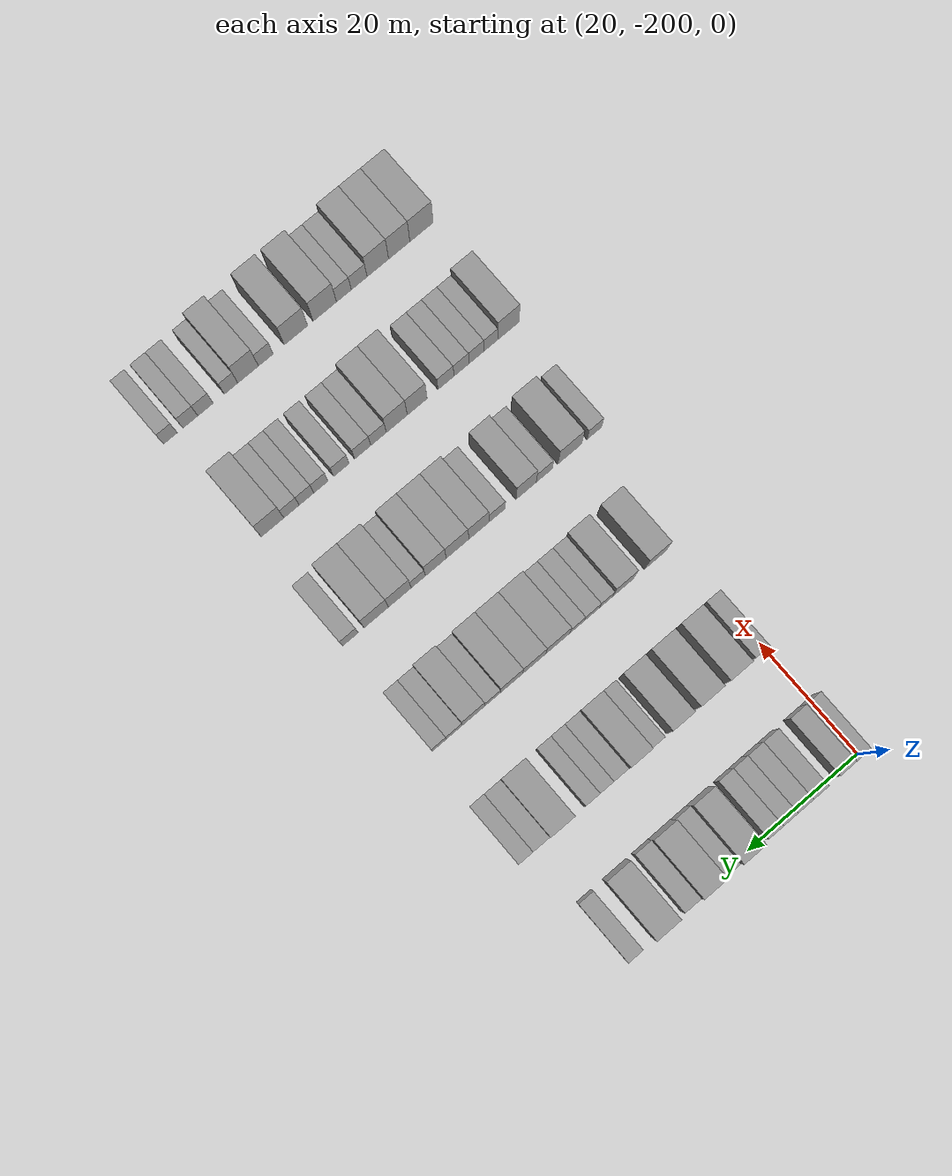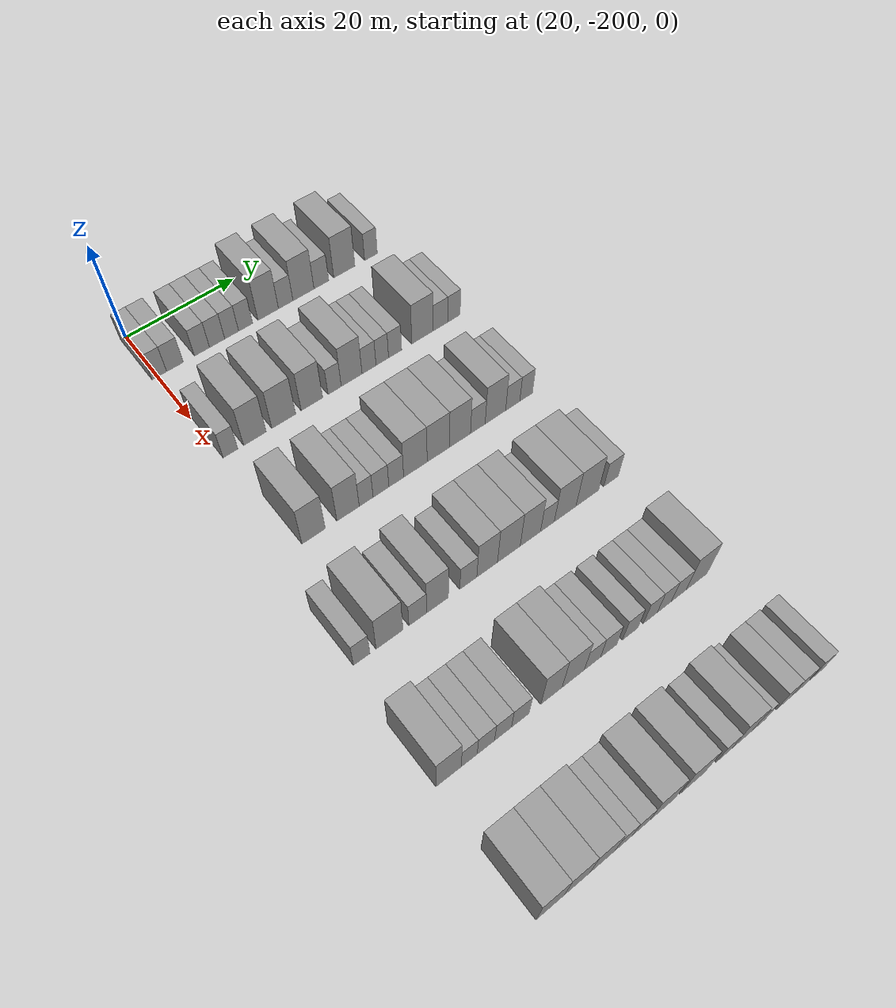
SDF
<sdf version="1.6">
 <world name="default">
  <model name="building_36">
   <static>1</static>
   <pose>25.0000 -199.6421 0 0.000000 0.000000 0.000000</pose>
   <link name="link">
    <pose>0 0 3.00 0 0 0</pose>
    <collision name="collision"><geometry><box><size>10.0000 2.5929 6.0000</size></box></geometry></collision>
    <visual name="visual">
     <cast_shadows>0</cast_shadows>
     <geometry><box><size>10.0000 2.5929 6.0000</size></box></geometry>
     <material>
      <script>
       <uri>model://grey_wall/materials/scripts</uri>
       <uri>model://grey_wall/materials/textures</uri>
       <name>vrc/grey_wall</name>
      </script>
     </material>
    </visual>
   </link>
  </model>
  <model name="building_37">
   <static>1</static>
   <pose>25.0000 -196.8512 0 0.000000 0.000000 0.000000</pose>
   <link name="link">
    <pose>0 0 3.00 0 0 0</pose>
    <collision name="collision"><geometry><box><size>10.0000 2.9890 6.0000</size></box></geometry></collision>
    <visual name="visual">
     <cast_shadows>0</cast_shadows>
     <geometry><box><size>10.0000 2.9890 6.0000</size></box></geometry>
     <material>
      <script>
       <uri>model://grey_wall/materials/scripts</uri>
       <uri>model://grey_wall/materials/textures</uri>
       <name>vrc/grey_wall</name>
      </script>
     </material>
    </visual>
   </link>
  </model>
  <model name="building_38">
   <static>1</static>
   <pose>25.0000 -191.9824 0 0.000000 0.000000 0.000000</pose>
   <link name="link">
    <pose>0 0 3.00 0 0 0</pose>
    <collision name="collision"><geometry><box><size>10.0000 2.7486 6.0000</size></box></geometry></collision>
    <visual name="visual">
     <cast_shadows>0</cast_shadows>
     <geometry><box><size>10.0000 2.7486 6.0000</size></box></geometry>
     <material>
      <script>
       <uri>model://grey_wall/materials/scripts</uri>
       <uri>model://grey_wall/materials/textures</uri>
       <name>vrc/grey_wall</name>
      </script>
     </material>
    </visual>
   </link>
  </model>
  <model name="building_39">
   <static>1</static>
   <pose>25.0000 -189.2116 0 0.000000 0.000000 0.000000</pose>
   <link name="link">
    <pose>0 0 3.00 0 0 0</pose>
    <collision name="collision"><geometry><box><size>10.0000 2.7929 6.0000</size></box></geometry></collision>
    <visual name="visual">
     <cast_shadows>0</cast_shadows>
     <geometry><box><size>10.0000 2.7929 6.0000</size></box></geometry>
     <material>
      <script>
       <uri>model://grey_wall/materials/scripts</uri>
       <uri>model://grey_wall/materials/textures</uri>
       <name>vrc/grey_wall</name>
      </script>
     </material>
    </visual>
   </link>
  </model>
  <model name="building_40">
   <static>1</static>
   <pose>25.0000 -186.5201 0 0.000000 0.000000 0.000000</pose>
   <link name="link">
    <pose>0 0 3.00 0 0 0</pose>
    <collision name="collision"><geometry><box><size>10.0000 2.5901 6.0000</size></box></geometry></collision>
    <visual name="visual">
     <cast_shadows>0</cast_shadows>
     <geometry><box><size>10.0000 2.5901 6.0000</size></box></geometry>
     <material>
      <script>
       <uri>model://grey_wall/materials/scripts</uri>
       <uri>model://grey_wall/materials/textures</uri>
       <name>vrc/grey_wall</name>
      </script>
     </material>
    </visual>
   </link>
  </model>
  <model name="building_41">
   <static>1</static>
   <pose>25.0000 -183.9084 0 0.000000 0.000000 0.000000</pose>
   <link name="link">
    <pose>0 0 3.00 0 0 0</pose>
    <collision name="collision"><geometry><box><size>10.0000 2.6333 6.0000</size></box></geometry></collision>
    <visual name="visual">
     <cast_shadows>0</cast_shadows>
     <geometry><box><size>10.0000 2.6333 6.0000</size></box></geometry>
     <material>
      <script>
       <uri>model://grey_wall/materials/scripts</uri>
       <uri>model://grey_wall/materials/textures</uri>
       <name>vrc/grey_wall</name>
      </script>
     </material>
    </visual>
   </link>
  </model>
  <model name="building_42">
   <static>1</static>
   <pose>25.0000 -179.6221 0 0.000000 0.000000 0.000000</pose>
   <link name="link">
    <pose>0 0 4.50 0 0 0</pose>
    <collision name="collision"><geometry><box><size>10.0000 3.9394 9.0000</size></box></geometry></collision>
    <visual name="visual">
     <cast_shadows>0</cast_shadows>
     <geometry><box><size>10.0000 3.9394 9.0000</size></box></geometry>
     <material>
      <script>
       <uri>model://grey_wall/materials/scripts</uri>
       <uri>model://grey_wall/materials/textures</uri>
       <name>vrc/grey_wall</name>
      </script>
     </material>
    </visual>
   </link>
  </model>
  <model name="building_43">
   <static>1</static>
   <pose>25.0000 -176.2535 0 0.000000 0.000000 0.000000</pose>
   <link name="link">
    <pose>0 0 3.00 0 0 0</pose>
    <collision name="collision"><geometry><box><size>10.0000 2.7978 6.0000</size></box></geometry></collision>
    <visual name="visual">
     <cast_shadows>0</cast_shadows>
     <geometry><box><size>10.0000 2.7978 6.0000</size></box></geometry>
     <material>
      <script>
       <uri>model://grey_wall/materials/scripts</uri>
       <uri>model://grey_wall/materials/textures</uri>
       <name>vrc/grey_wall</name>
      </script>
     </material>
    </visual>
   </link>
  </model>
  <model name="building_44">
   <static>1</static>
   <pose>25.0000 -172.7922 0 0.000000 0.000000 0.000000</pose>
   <link name="link">
    <pose>0 0 4.50 0 0 0</pose>
    <collision name="collision"><geometry><box><size>10.0000 4.1246 9.0000</size></box></geometry></collision>
    <visual name="visual">
     <cast_shadows>0</cast_shadows>
     <geometry><box><size>10.0000 4.1246 9.0000</size></box></geometry>
     <material>
      <script>
       <uri>model://grey_wall/materials/scripts</uri>
       <uri>model://grey_wall/materials/textures</uri>
       <name>vrc/grey_wall</name>
      </script>
     </material>
    </visual>
   </link>
  </model>
  <model name="building_45">
   <static>1</static>
   <pose>25.0000 -169.2638 0 0.000000 0.000000 0.000000</pose>
   <link name="link">
    <pose>0 0 3.00 0 0 0</pose>
    <collision name="collision"><geometry><box><size>10.0000 2.9322 6.0000</size></box></geometry></collision>
    <visual name="visual">
     <cast_shadows>0</cast_shadows>
     <geometry><box><size>10.0000 2.9322 6.0000</size></box></geometry>
     <material>
      <script>
       <uri>model://grey_wall/materials/scripts</uri>
       <uri>model://grey_wall/materials/textures</uri>
       <name>vrc/grey_wall</name>
      </script>
     </material>
    </visual>
   </link>
  </model>
  <model name="building_46">
   <static>1</static>
   <pose>25.0000 -164.6621 0 0.000000 0.000000 0.000000</pose>
   <link name="link">
    <pose>0 0 4.50 0 0 0</pose>
    <collision name="collision"><geometry><box><size>10.0000 4.2710 9.0000</size></box></geometry></collision>
    <visual name="visual">
     <cast_shadows>0</cast_shadows>
     <geometry><box><size>10.0000 4.2710 9.0000</size></box></geometry>
     <material>
      <script>
       <uri>model://grey_wall/materials/scripts</uri>
       <uri>model://grey_wall/materials/textures</uri>
       <name>vrc/grey_wall</name>
      </script>
     </material>
    </visual>
   </link>
  </model>
  <model name="building_47">
   <static>1</static>
   <pose>25.0000 -159.2184 0 0.000000 0.000000 0.000000</pose>
   <link name="link">
    <pose>0 0 3.00 0 0 0</pose>
    <collision name="collision"><geometry><box><size>10.0000 2.6165 6.0000</size></box></geometry></collision>
    <visual name="visual">
     <cast_shadows>0</cast_shadows>
     <geometry><box><size>10.0000 2.6165 6.0000</size></box></geometry>
     <material>
      <script>
       <uri>model://grey_wall/materials/scripts</uri>
       <uri>model://grey_wall/materials/textures</uri>
       <name>vrc/grey_wall</name>
      </script>
     </material>
    </visual>
   </link>
  </model>
  <model name="building_213">
   <static>1</static>
   <pose>44.0000 -198.5440 0 0.000000 0.000000 0.000000</pose>
   <link name="link">
    <pose>0 0 3.00 0 0 0</pose>
    <collision name="collision"><geometry><box><size>10.0000 2.5553 6.0000</size></box></geometry></collision>
    <visual name="visual">
     <cast_shadows>0</cast_shadows>
     <geometry><box><size>10.0000 2.5553 6.0000</size></box></geometry>
     <material>
      <script>
       <uri>model://grey_wall/materials/scripts</uri>
       <uri>model://grey_wall/materials/textures</uri>
       <name>vrc/grey_wall</name>
      </script>
     </material>
    </visual>
   </link>
  </model>
  <model name="building_214">
   <static>1</static>
   <pose>44.0000 -194.2809 0 0.000000 0.000000 0.000000</pose>
   <link name="link">
    <pose>0 0 4.50 0 0 0</pose>
    <collision name="collision"><geometry><box><size>10.0000 3.9709 9.0000</size></box></geometry></collision>
    <visual name="visual">
     <cast_shadows>0</cast_shadows>
     <geometry><box><size>10.0000 3.9709 9.0000</size></box></geometry>
     <material>
      <script>
       <uri>model://grey_wall/materials/scripts</uri>
       <uri>model://grey_wall/materials/textures</uri>
       <name>vrc/grey_wall</name>
      </script>
     </material>
    </visual>
   </link>
  </model>
  <model name="building_215">
   <static>1</static>
   <pose>44.0000 -189.1593 0 0.000000 0.000000 0.000000</pose>
   <link name="link">
    <pose>0 0 4.50 0 0 0</pose>
    <collision name="collision"><geometry><box><size>10.0000 4.2723 9.0000</size></box></geometry></collision>
    <visual name="visual">
     <cast_shadows>0</cast_shadows>
     <geometry><box><size>10.0000 4.2723 9.0000</size></box></geometry>
     <material>
      <script>
       <uri>model://grey_wall/materials/scripts</uri>
       <uri>model://grey_wall/materials/textures</uri>
       <name>vrc/grey_wall</name>
      </script>
     </material>
    </visual>
   </link>
  </model>
  <model name="building_216">
   <static>1</static>
   <pose>44.0000 -184.0542 0 0.000000 0.000000 0.000000</pose>
   <link name="link">
    <pose>0 0 4.50 0 0 0</pose>
    <collision name="collision"><geometry><box><size>10.0000 3.9378 9.0000</size></box></geometry></collision>
    <visual name="visual">
     <cast_shadows>0</cast_shadows>
     <geometry><box><size>10.0000 3.9378 9.0000</size></box></geometry>
     <material>
      <script>
       <uri>model://grey_wall/materials/scripts</uri>
       <uri>model://grey_wall/materials/textures</uri>
       <name>vrc/grey_wall</name>
      </script>
     </material>
    </visual>
   </link>
  </model>
  <model name="building_217">
   <static>1</static>
   <pose>44.0000 -179.8505 0 0.000000 0.000000 0.000000</pose>
   <link name="link">
    <pose>0 0 3.00 0 0 0</pose>
    <collision name="collision"><geometry><box><size>10.0000 2.4697 6.0000</size></box></geometry></collision>
    <visual name="visual">
     <cast_shadows>0</cast_shadows>
     <geometry><box><size>10.0000 2.4697 6.0000</size></box></geometry>
     <material>
      <script>
       <uri>model://grey_wall/materials/scripts</uri>
       <uri>model://grey_wall/materials/textures</uri>
       <name>vrc/grey_wall</name>
      </script>
     </material>
    </visual>
   </link>
  </model>
  <model name="building_218">
   <static>1</static>
   <pose>44.0000 -176.6518 0 0.000000 0.000000 0.000000</pose>
   <link name="link">
    <pose>0 0 4.50 0 0 0</pose>
    <collision name="collision"><geometry><box><size>10.0000 3.9276 9.0000</size></box></geometry></collision>
    <visual name="visual">
     <cast_shadows>0</cast_shadows>
     <geometry><box><size>10.0000 3.9276 9.0000</size></box></geometry>
     <material>
      <script>
       <uri>model://grey_wall/materials/scripts</uri>
       <uri>model://grey_wall/materials/textures</uri>
       <name>vrc/grey_wall</name>
      </script>
     </material>
    </visual>
   </link>
  </model>
  <model name="building_219">
   <static>1</static>
   <pose>44.0000 -173.3503 0 0.000000 0.000000 0.000000</pose>
   <link name="link">
    <pose>0 0 3.00 0 0 0</pose>
    <collision name="collision"><geometry><box><size>10.0000 2.6756 6.0000</size></box></geometry></collision>
    <visual name="visual">
     <cast_shadows>0</cast_shadows>
     <geometry><box><size>10.0000 2.6756 6.0000</size></box></geometry>
     <material>
      <script>
       <uri>model://grey_wall/materials/scripts</uri>
       <uri>model://grey_wall/materials/textures</uri>
       <name>vrc/grey_wall</name>
      </script>
     </material>
    </visual>
   </link>
  </model>
  <model name="building_220">
   <static>1</static>
   <pose>44.0000 -170.7973 0 0.000000 0.000000 0.000000</pose>
   <link name="link">
    <pose>0 0 3.00 0 0 0</pose>
    <collision name="collision"><geometry><box><size>10.0000 2.4304 6.0000</size></box></geometry></collision>
    <visual name="visual">
     <cast_shadows>0</cast_shadows>
     <geometry><box><size>10.0000 2.4304 6.0000</size></box></geometry>
     <material>
      <script>
       <uri>model://grey_wall/materials/scripts</uri>
       <uri>model://grey_wall/materials/textures</uri>
       <name>vrc/grey_wall</name>
      </script>
     </material>
    </visual>
   </link>
  </model>
  <model name="building_221">
   <static>1</static>
   <pose>44.0000 -168.3030 0 0.000000 0.000000 0.000000</pose>
   <link name="link">
    <pose>0 0 3.00 0 0 0</pose>
    <collision name="collision"><geometry><box><size>10.0000 2.5582 6.0000</size></box></geometry></collision>
    <visual name="visual">
     <cast_shadows>0</cast_shadows>
     <geometry><box><size>10.0000 2.5582 6.0000</size></box></geometry>
     <material>
      <script>
       <uri>model://grey_wall/materials/scripts</uri>
       <uri>model://grey_wall/materials/textures</uri>
       <name>vrc/grey_wall</name>
      </script>
     </material>
    </visual>
   </link>
  </model>
  <model name="building_222">
   <static>1</static>
   <pose>44.0000 -162.8863 0 0.000000 0.000000 0.000000</pose>
   <link name="link">
    <pose>0 0 4.50 0 0 0</pose>
    <collision name="collision"><geometry><box><size>10.0000 4.2752 9.0000</size></box></geometry></collision>
    <visual name="visual">
     <cast_shadows>0</cast_shadows>
     <geometry><box><size>10.0000 4.2752 9.0000</size></box></geometry>
     <material>
      <script>
       <uri>model://grey_wall/materials/scripts</uri>
       <uri>model://grey_wall/materials/textures</uri>
       <name>vrc/grey_wall</name>
      </script>
     </material>
    </visual>
   </link>
  </model>
  <model name="building_223">
   <static>1</static>
   <pose>44.0000 -159.2791 0 0.000000 0.000000 0.000000</pose>
   <link name="link">
    <pose>0 0 3.00 0 0 0</pose>
    <collision name="collision"><geometry><box><size>10.0000 2.9393 6.0000</size></box></geometry></collision>
    <visual name="visual">
     <cast_shadows>0</cast_shadows>
     <geometry><box><size>10.0000 2.9393 6.0000</size></box></geometry>
     <material>
      <script>
       <uri>model://grey_wall/materials/scripts</uri>
       <uri>model://grey_wall/materials/textures</uri>
       <name>vrc/grey_wall</name>
      </script>
     </material>
    </visual>
   </link>
  </model>
  <model name="building_224">
   <static>1</static>
   <pose>44.0000 -156.5455 0 0.000000 0.000000 0.000000</pose>
   <link name="link">
    <pose>0 0 3.00 0 0 0</pose>
    <collision name="collision"><geometry><box><size>10.0000 2.5279 6.0000</size></box></geometry></collision>
    <visual name="visual">
     <cast_shadows>0</cast_shadows>
     <geometry><box><size>10.0000 2.5279 6.0000</size></box></geometry>
     <material>
      <script>
       <uri>model://grey_wall/materials/scripts</uri>
       <uri>model://grey_wall/materials/textures</uri>
       <name>vrc/grey_wall</name>
      </script>
     </material>
    </visual>
   </link>
  </model>
  <model name="building_395">
   <static>1</static>
   <pose>63.0000 -196.6802 0 0.000000 0.000000 0.000000</pose>
   <link name="link">
    <pose>0 0 4.50 0 0 0</pose>
    <collision name="collision"><geometry><box><size>10.0000 3.9564 9.0000</size></box></geometry></collision>
    <visual name="visual">
     <cast_shadows>0</cast_shadows>
     <geometry><box><size>10.0000 3.9564 9.0000</size></box></geometry>
     <material>
      <script>
       <uri>model://grey_wall/materials/scripts</uri>
       <uri>model://grey_wall/materials/textures</uri>
       <name>vrc/grey_wall</name>
      </script>
     </material>
    </visual>
   </link>
  </model>
  <model name="building_396">
   <static>1</static>
   <pose>63.0000 -190.7588 0 0.000000 0.000000 0.000000</pose>
   <link name="link">
    <pose>0 0 4.50 0 0 0</pose>
    <collision name="collision"><geometry><box><size>10.0000 3.8863 9.0000</size></box></geometry></collision>
    <visual name="visual">
     <cast_shadows>0</cast_shadows>
     <geometry><box><size>10.0000 3.8863 9.0000</size></box></geometry>
     <material>
      <script>
       <uri>model://grey_wall/materials/scripts</uri>
       <uri>model://grey_wall/materials/textures</uri>
       <name>vrc/grey_wall</name>
      </script>
     </material>
    </visual>
   </link>
  </model>
  <model name="building_397">
   <static>1</static>
   <pose>63.0000 -187.5917 0 0.000000 0.000000 0.000000</pose>
   <link name="link">
    <pose>0 0 3.00 0 0 0</pose>
    <collision name="collision"><geometry><box><size>10.0000 2.4477 6.0000</size></box></geometry></collision>
    <visual name="visual">
     <cast_shadows>0</cast_shadows>
     <geometry><box><size>10.0000 2.4477 6.0000</size></box></geometry>
     <material>
      <script>
       <uri>model://grey_wall/materials/scripts</uri>
       <uri>model://grey_wall/materials/textures</uri>
       <name>vrc/grey_wall</name>
      </script>
     </material>
    </visual>
   </link>
  </model>
  <model name="building_398">
   <static>1</static>
   <pose>63.0000 -184.9614 0 0.000000 0.000000 0.000000</pose>
   <link name="link">
    <pose>0 0 3.00 0 0 0</pose>
    <collision name="collision"><geometry><box><size>10.0000 2.8130 6.0000</size></box></geometry></collision>
    <visual name="visual">
     <cast_shadows>0</cast_shadows>
     <geometry><box><size>10.0000 2.8130 6.0000</size></box></geometry>
     <material>
      <script>
       <uri>model://grey_wall/materials/scripts</uri>
       <uri>model://grey_wall/materials/textures</uri>
       <name>vrc/grey_wall</name>
      </script>
     </material>
    </visual>
   </link>
  </model>
  <model name="building_399">
   <static>1</static>
   <pose>63.0000 -182.2261 0 0.000000 0.000000 0.000000</pose>
   <link name="link">
    <pose>0 0 3.00 0 0 0</pose>
    <collision name="collision"><geometry><box><size>10.0000 2.6577 6.0000</size></box></geometry></collision>
    <visual name="visual">
     <cast_shadows>0</cast_shadows>
     <geometry><box><size>10.0000 2.6577 6.0000</size></box></geometry>
     <material>
      <script>
       <uri>model://grey_wall/materials/scripts</uri>
       <uri>model://grey_wall/materials/textures</uri>
       <name>vrc/grey_wall</name>
      </script>
     </material>
    </visual>
   </link>
  </model>
  <model name="building_400">
   <static>1</static>
   <pose>63.0000 -178.7438 0 0.000000 0.000000 0.000000</pose>
   <link name="link">
    <pose>0 0 4.50 0 0 0</pose>
    <collision name="collision"><geometry><box><size>10.0000 4.3069 9.0000</size></box></geometry></collision>
    <visual name="visual">
     <cast_shadows>0</cast_shadows>
     <geometry><box><size>10.0000 4.3069 9.0000</size></box></geometry>
     <material>
      <script>
       <uri>model://grey_wall/materials/scripts</uri>
       <uri>model://grey_wall/materials/textures</uri>
       <name>vrc/grey_wall</name>
      </script>
     </material>
    </visual>
   </link>
  </model>
  <model name="building_401">
   <static>1</static>
   <pose>63.0000 -174.5188 0 0.000000 0.000000 0.000000</pose>
   <link name="link">
    <pose>0 0 4.50 0 0 0</pose>
    <collision name="collision"><geometry><box><size>10.0000 4.1432 9.0000</size></box></geometry></collision>
    <visual name="visual">
     <cast_shadows>0</cast_shadows>
     <geometry><box><size>10.0000 4.1432 9.0000</size></box></geometry>
     <material>
      <script>
       <uri>model://grey_wall/materials/scripts</uri>
       <uri>model://grey_wall/materials/textures</uri>
       <name>vrc/grey_wall</name>
      </script>
     </material>
    </visual>
   </link>
  </model>
  <model name="building_402">
   <static>1</static>
   <pose>63.0000 -170.4401 0 0.000000 0.000000 0.000000</pose>
   <link name="link">
    <pose>0 0 4.50 0 0 0</pose>
    <collision name="collision"><geometry><box><size>10.0000 4.0142 9.0000</size></box></geometry></collision>
    <visual name="visual">
     <cast_shadows>0</cast_shadows>
     <geometry><box><size>10.0000 4.0142 9.0000</size></box></geometry>
     <material>
      <script>
       <uri>model://grey_wall/materials/scripts</uri>
       <uri>model://grey_wall/materials/textures</uri>
       <name>vrc/grey_wall</name>
      </script>
     </material>
    </visual>
   </link>
  </model>
  <model name="building_403">
   <static>1</static>
   <pose>63.0000 -167.0190 0 0.000000 0.000000 0.000000</pose>
   <link name="link">
    <pose>0 0 3.00 0 0 0</pose>
    <collision name="collision"><geometry><box><size>10.0000 2.8282 6.0000</size></box></geometry></collision>
    <visual name="visual">
     <cast_shadows>0</cast_shadows>
     <geometry><box><size>10.0000 2.8282 6.0000</size></box></geometry>
     <material>
      <script>
       <uri>model://grey_wall/materials/scripts</uri>
       <uri>model://grey_wall/materials/textures</uri>
       <name>vrc/grey_wall</name>
      </script>
     </material>
    </visual>
   </link>
  </model>
  <model name="building_404">
   <static>1</static>
   <pose>63.0000 -163.6080 0 0.000000 0.000000 0.000000</pose>
   <link name="link">
    <pose>0 0 4.50 0 0 0</pose>
    <collision name="collision"><geometry><box><size>10.0000 3.9938 9.0000</size></box></geometry></collision>
    <visual name="visual">
     <cast_shadows>0</cast_shadows>
     <geometry><box><size>10.0000 3.9938 9.0000</size></box></geometry>
     <material>
      <script>
       <uri>model://grey_wall/materials/scripts</uri>
       <uri>model://grey_wall/materials/textures</uri>
       <name>vrc/grey_wall</name>
      </script>
     </material>
    </visual>
   </link>
  </model>
  <model name="building_405">
   <static>1</static>
   <pose>63.0000 -160.2075 0 0.000000 0.000000 0.000000</pose>
   <link name="link">
    <pose>0 0 3.00 0 0 0</pose>
    <collision name="collision"><geometry><box><size>10.0000 2.8072 6.0000</size></box></geometry></collision>
    <visual name="visual">
     <cast_shadows>0</cast_shadows>
     <geometry><box><size>10.0000 2.8072 6.0000</size></box></geometry>
     <material>
      <script>
       <uri>model://grey_wall/materials/scripts</uri>
       <uri>model://grey_wall/materials/textures</uri>
       <name>vrc/grey_wall</name>
      </script>
     </material>
    </visual>
   </link>
  </model>
  <model name="building_406">
   <static>1</static>
   <pose>63.0000 -157.5357 0 0.000000 0.000000 0.000000</pose>
   <link name="link">
    <pose>0 0 3.00 0 0 0</pose>
    <collision name="collision"><geometry><box><size>10.0000 2.5365 6.0000</size></box></geometry></collision>
    <visual name="visual">
     <cast_shadows>0</cast_shadows>
     <geometry><box><size>10.0000 2.5365 6.0000</size></box></geometry>
     <material>
      <script>
       <uri>model://grey_wall/materials/scripts</uri>
       <uri>model://grey_wall/materials/textures</uri>
       <name>vrc/grey_wall</name>
      </script>
     </material>
    </visual>
   </link>
  </model>
  <model name="building_565">
   <static>1</static>
   <pose>82.0000 -202.0254 0 0.000000 0.000000 0.000000</pose>
   <link name="link">
    <pose>0 0 3.00 0 0 0</pose>
    <collision name="collision"><geometry><box><size>10.0000 2.6658 6.0000</size></box></geometry></collision>
    <visual name="visual">
     <cast_shadows>0</cast_shadows>
     <geometry><box><size>10.0000 2.6658 6.0000</size></box></geometry>
     <material>
      <script>
       <uri>model://grey_wall/materials/scripts</uri>
       <uri>model://grey_wall/materials/textures</uri>
       <name>vrc/grey_wall</name>
      </script>
     </material>
    </visual>
   </link>
  </model>
  <model name="building_566">
   <static>1</static>
   <pose>82.0000 -197.4881 0 0.000000 0.000000 0.000000</pose>
   <link name="link">
    <pose>0 0 4.50 0 0 0</pose>
    <collision name="collision"><geometry><box><size>10.0000 4.4088 9.0000</size></box></geometry></collision>
    <visual name="visual">
     <cast_shadows>0</cast_shadows>
     <geometry><box><size>10.0000 4.4088 9.0000</size></box></geometry>
     <material>
      <script>
       <uri>model://grey_wall/materials/scripts</uri>
       <uri>model://grey_wall/materials/textures</uri>
       <name>vrc/grey_wall</name>
      </script>
     </material>
    </visual>
   </link>
  </model>
  <model name="building_567">
   <static>1</static>
   <pose>82.0000 -192.7942 0 0.000000 0.000000 0.000000</pose>
   <link name="link">
    <pose>0 0 3.00 0 0 0</pose>
    <collision name="collision"><geometry><box><size>10.0000 2.9792 6.0000</size></box></geometry></collision>
    <visual name="visual">
     <cast_shadows>0</cast_shadows>
     <geometry><box><size>10.0000 2.9792 6.0000</size></box></geometry>
     <material>
      <script>
       <uri>model://grey_wall/materials/scripts</uri>
       <uri>model://grey_wall/materials/textures</uri>
       <name>vrc/grey_wall</name>
      </script>
     </material>
    </visual>
   </link>
  </model>
  <model name="building_568">
   <static>1</static>
   <pose>82.0000 -189.4535 0 0.000000 0.000000 0.000000</pose>
   <link name="link">
    <pose>0 0 4.50 0 0 0</pose>
    <collision name="collision"><geometry><box><size>10.0000 3.7021 9.0000</size></box></geometry></collision>
    <visual name="visual">
     <cast_shadows>0</cast_shadows>
     <geometry><box><size>10.0000 3.7021 9.0000</size></box></geometry>
     <material>
      <script>
       <uri>model://grey_wall/materials/scripts</uri>
       <uri>model://grey_wall/materials/textures</uri>
       <name>vrc/grey_wall</name>
      </script>
     </material>
    </visual>
   </link>
  </model>
  <model name="building_569">
   <static>1</static>
   <pose>82.0000 -184.1199 0 0.000000 0.000000 0.000000</pose>
   <link name="link">
    <pose>0 0 3.00 0 0 0</pose>
    <collision name="collision"><geometry><box><size>10.0000 2.9651 6.0000</size></box></geometry></collision>
    <visual name="visual">
     <cast_shadows>0</cast_shadows>
     <geometry><box><size>10.0000 2.9651 6.0000</size></box></geometry>
     <material>
      <script>
       <uri>model://grey_wall/materials/scripts</uri>
       <uri>model://grey_wall/materials/textures</uri>
       <name>vrc/grey_wall</name>
      </script>
     </material>
    </visual>
   </link>
  </model>
  <model name="building_570">
   <static>1</static>
   <pose>82.0000 -180.7996 0 0.000000 0.000000 0.000000</pose>
   <link name="link">
    <pose>0 0 4.50 0 0 0</pose>
    <collision name="collision"><geometry><box><size>10.0000 3.6754 9.0000</size></box></geometry></collision>
    <visual name="visual">
     <cast_shadows>0</cast_shadows>
     <geometry><box><size>10.0000 3.6754 9.0000</size></box></geometry>
     <material>
      <script>
       <uri>model://grey_wall/materials/scripts</uri>
       <uri>model://grey_wall/materials/textures</uri>
       <name>vrc/grey_wall</name>
      </script>
     </material>
    </visual>
   </link>
  </model>
  <model name="building_571">
   <static>1</static>
   <pose>82.0000 -176.9028 0 0.000000 0.000000 0.000000</pose>
   <link name="link">
    <pose>0 0 4.50 0 0 0</pose>
    <collision name="collision"><geometry><box><size>10.0000 4.1184 9.0000</size></box></geometry></collision>
    <visual name="visual">
     <cast_shadows>0</cast_shadows>
     <geometry><box><size>10.0000 4.1184 9.0000</size></box></geometry>
     <material>
      <script>
       <uri>model://grey_wall/materials/scripts</uri>
       <uri>model://grey_wall/materials/textures</uri>
       <name>vrc/grey_wall</name>
      </script>
     </material>
    </visual>
   </link>
  </model>
  <model name="building_572">
   <static>1</static>
   <pose>82.0000 -172.9688 0 0.000000 0.000000 0.000000</pose>
   <link name="link">
    <pose>0 0 4.50 0 0 0</pose>
    <collision name="collision"><geometry><box><size>10.0000 3.7495 9.0000</size></box></geometry></collision>
    <visual name="visual">
     <cast_shadows>0</cast_shadows>
     <geometry><box><size>10.0000 3.7495 9.0000</size></box></geometry>
     <material>
      <script>
       <uri>model://grey_wall/materials/scripts</uri>
       <uri>model://grey_wall/materials/textures</uri>
       <name>vrc/grey_wall</name>
      </script>
     </material>
    </visual>
   </link>
  </model>
  <model name="building_573">
   <static>1</static>
   <pose>82.0000 -169.8107 0 0.000000 0.000000 0.000000</pose>
   <link name="link">
    <pose>0 0 3.00 0 0 0</pose>
    <collision name="collision"><geometry><box><size>10.0000 2.5668 6.0000</size></box></geometry></collision>
    <visual name="visual">
     <cast_shadows>0</cast_shadows>
     <geometry><box><size>10.0000 2.5668 6.0000</size></box></geometry>
     <material>
      <script>
       <uri>model://grey_wall/materials/scripts</uri>
       <uri>model://grey_wall/materials/textures</uri>
       <name>vrc/grey_wall</name>
      </script>
     </material>
    </visual>
   </link>
  </model>
  <model name="building_574">
   <static>1</static>
   <pose>82.0000 -166.4629 0 0.000000 0.000000 0.000000</pose>
   <link name="link">
    <pose>0 0 4.50 0 0 0</pose>
    <collision name="collision"><geometry><box><size>10.0000 4.1288 9.0000</size></box></geometry></collision>
    <visual name="visual">
     <cast_shadows>0</cast_shadows>
     <geometry><box><size>10.0000 4.1288 9.0000</size></box></geometry>
     <material>
      <script>
       <uri>model://grey_wall/materials/scripts</uri>
       <uri>model://grey_wall/materials/textures</uri>
       <name>vrc/grey_wall</name>
      </script>
     </material>
    </visual>
   </link>
  </model>
  <model name="building_575">
   <static>1</static>
   <pose>82.0000 -162.2037 0 0.000000 0.000000 0.000000</pose>
   <link name="link">
    <pose>0 0 4.50 0 0 0</pose>
    <collision name="collision"><geometry><box><size>10.0000 4.3895 9.0000</size></box></geometry></collision>
    <visual name="visual">
     <cast_shadows>0</cast_shadows>
     <geometry><box><size>10.0000 4.3895 9.0000</size></box></geometry>
     <material>
      <script>
       <uri>model://grey_wall/materials/scripts</uri>
       <uri>model://grey_wall/materials/textures</uri>
       <name>vrc/grey_wall</name>
      </script>
     </material>
    </visual>
   </link>
  </model>
  <model name="building_576">
   <static>1</static>
   <pose>82.0000 -157.5925 0 0.000000 0.000000 0.000000</pose>
   <link name="link">
    <pose>0 0 3.00 0 0 0</pose>
    <collision name="collision"><geometry><box><size>10.0000 2.8329 6.0000</size></box></geometry></collision>
    <visual name="visual">
     <cast_shadows>0</cast_shadows>
     <geometry><box><size>10.0000 2.8329 6.0000</size></box></geometry>
     <material>
      <script>
       <uri>model://grey_wall/materials/scripts</uri>
       <uri>model://grey_wall/materials/textures</uri>
       <name>vrc/grey_wall</name>
      </script>
     </material>
    </visual>
   </link>
  </model>
  <model name="building_742">
   <static>1</static>
   <pose>101.0000 -202.5107 0 0.000000 0.000000 0.000000</pose>
   <link name="link">
    <pose>0 0 4.50 0 0 0</pose>
    <collision name="collision"><geometry><box><size>10.0000 3.9332 9.0000</size></box></geometry></collision>
    <visual name="visual">
     <cast_shadows>0</cast_shadows>
     <geometry><box><size>10.0000 3.9332 9.0000</size></box></geometry>
     <material>
      <script>
       <uri>model://grey_wall/materials/scripts</uri>
       <uri>model://grey_wall/materials/textures</uri>
       <name>vrc/grey_wall</name>
      </script>
     </material>
    </visual>
   </link>
  </model>
  <model name="building_743">
   <static>1</static>
   <pose>101.0000 -199.2715 0 0.000000 0.000000 0.000000</pose>
   <link name="link">
    <pose>0 0 3.00 0 0 0</pose>
    <collision name="collision"><geometry><box><size>10.0000 2.5451 6.0000</size></box></geometry></collision>
    <visual name="visual">
     <cast_shadows>0</cast_shadows>
     <geometry><box><size>10.0000 2.5451 6.0000</size></box></geometry>
     <material>
      <script>
       <uri>model://grey_wall/materials/scripts</uri>
       <uri>model://grey_wall/materials/textures</uri>
       <name>vrc/grey_wall</name>
      </script>
     </material>
    </visual>
   </link>
  </model>
  <model name="building_744">
   <static>1</static>
   <pose>101.0000 -196.5921 0 0.000000 0.000000 0.000000</pose>
   <link name="link">
    <pose>0 0 3.00 0 0 0</pose>
    <collision name="collision"><geometry><box><size>10.0000 2.8138 6.0000</size></box></geometry></collision>
    <visual name="visual">
     <cast_shadows>0</cast_shadows>
     <geometry><box><size>10.0000 2.8138 6.0000</size></box></geometry>
     <material>
      <script>
       <uri>model://grey_wall/materials/scripts</uri>
       <uri>model://grey_wall/materials/textures</uri>
       <name>vrc/grey_wall</name>
      </script>
     </material>
    </visual>
   </link>
  </model>
  <model name="building_745">
   <static>1</static>
   <pose>101.0000 -193.8060 0 0.000000 0.000000 0.000000</pose>
   <link name="link">
    <pose>0 0 3.00 0 0 0</pose>
    <collision name="collision"><geometry><box><size>10.0000 2.7584 6.0000</size></box></geometry></collision>
    <visual name="visual">
     <cast_shadows>0</cast_shadows>
     <geometry><box><size>10.0000 2.7584 6.0000</size></box></geometry>
     <material>
      <script>
       <uri>model://grey_wall/materials/scripts</uri>
       <uri>model://grey_wall/materials/textures</uri>
       <name>vrc/grey_wall</name>
      </script>
     </material>
    </visual>
   </link>
  </model>
  <model name="building_746">
   <static>1</static>
   <pose>101.0000 -190.9632 0 0.000000 0.000000 0.000000</pose>
   <link name="link">
    <pose>0 0 3.00 0 0 0</pose>
    <collision name="collision"><geometry><box><size>10.0000 2.9272 6.0000</size></box></geometry></collision>
    <visual name="visual">
     <cast_shadows>0</cast_shadows>
     <geometry><box><size>10.0000 2.9272 6.0000</size></box></geometry>
     <material>
      <script>
       <uri>model://grey_wall/materials/scripts</uri>
       <uri>model://grey_wall/materials/textures</uri>
       <name>vrc/grey_wall</name>
      </script>
     </material>
    </visual>
   </link>
  </model>
  <model name="building_747">
   <static>1</static>
   <pose>101.0000 -185.6898 0 0.000000 0.000000 0.000000</pose>
   <link name="link">
    <pose>0 0 4.50 0 0 0</pose>
    <collision name="collision"><geometry><box><size>10.0000 3.6197 9.0000</size></box></geometry></collision>
    <visual name="visual">
     <cast_shadows>0</cast_shadows>
     <geometry><box><size>10.0000 3.6197 9.0000</size></box></geometry>
     <material>
      <script>
       <uri>model://grey_wall/materials/scripts</uri>
       <uri>model://grey_wall/materials/textures</uri>
       <name>vrc/grey_wall</name>
      </script>
     </material>
    </visual>
   </link>
  </model>
  <model name="building_748">
   <static>1</static>
   <pose>101.0000 -181.9501 0 0.000000 0.000000 0.000000</pose>
   <link name="link">
    <pose>0 0 4.50 0 0 0</pose>
    <collision name="collision"><geometry><box><size>10.0000 3.8598 9.0000</size></box></geometry></collision>
    <visual name="visual">
     <cast_shadows>0</cast_shadows>
     <geometry><box><size>10.0000 3.8598 9.0000</size></box></geometry>
     <material>
      <script>
       <uri>model://grey_wall/materials/scripts</uri>
       <uri>model://grey_wall/materials/textures</uri>
       <name>vrc/grey_wall</name>
      </script>
     </material>
    </visual>
   </link>
  </model>
  <model name="building_749">
   <static>1</static>
   <pose>101.0000 -178.6012 0 0.000000 0.000000 0.000000</pose>
   <link name="link">
    <pose>0 0 3.00 0 0 0</pose>
    <collision name="collision"><geometry><box><size>10.0000 2.8381 6.0000</size></box></geometry></collision>
    <visual name="visual">
     <cast_shadows>0</cast_shadows>
     <geometry><box><size>10.0000 2.8381 6.0000</size></box></geometry>
     <material>
      <script>
       <uri>model://grey_wall/materials/scripts</uri>
       <uri>model://grey_wall/materials/textures</uri>
       <name>vrc/grey_wall</name>
      </script>
     </material>
    </visual>
   </link>
  </model>
  <model name="building_750">
   <static>1</static>
   <pose>101.0000 -175.7193 0 0.000000 0.000000 0.000000</pose>
   <link name="link">
    <pose>0 0 3.00 0 0 0</pose>
    <collision name="collision"><geometry><box><size>10.0000 2.9258 6.0000</size></box></geometry></collision>
    <visual name="visual">
     <cast_shadows>0</cast_shadows>
     <geometry><box><size>10.0000 2.9258 6.0000</size></box></geometry>
     <material>
      <script>
       <uri>model://grey_wall/materials/scripts</uri>
       <uri>model://grey_wall/materials/textures</uri>
       <name>vrc/grey_wall</name>
      </script>
     </material>
    </visual>
   </link>
  </model>
  <model name="building_751">
   <static>1</static>
   <pose>101.0000 -171.8413 0 0.000000 0.000000 0.000000</pose>
   <link name="link">
    <pose>0 0 3.00 0 0 0</pose>
    <collision name="collision"><geometry><box><size>10.0000 2.8303 6.0000</size></box></geometry></collision>
    <visual name="visual">
     <cast_shadows>0</cast_shadows>
     <geometry><box><size>10.0000 2.8303 6.0000</size></box></geometry>
     <material>
      <script>
       <uri>model://grey_wall/materials/scripts</uri>
       <uri>model://grey_wall/materials/textures</uri>
       <name>vrc/grey_wall</name>
      </script>
     </material>
    </visual>
   </link>
  </model>
  <model name="building_752">
   <static>1</static>
   <pose>101.0000 -168.1362 0 0.000000 0.000000 0.000000</pose>
   <link name="link">
    <pose>0 0 3.00 0 0 0</pose>
    <collision name="collision"><geometry><box><size>10.0000 2.5797 6.0000</size></box></geometry></collision>
    <visual name="visual">
     <cast_shadows>0</cast_shadows>
     <geometry><box><size>10.0000 2.5797 6.0000</size></box></geometry>
     <material>
      <script>
       <uri>model://grey_wall/materials/scripts</uri>
       <uri>model://grey_wall/materials/textures</uri>
       <name>vrc/grey_wall</name>
      </script>
     </material>
    </visual>
   </link>
  </model>
  <model name="building_753">
   <static>1</static>
   <pose>101.0000 -165.5204 0 0.000000 0.000000 0.000000</pose>
   <link name="link">
    <pose>0 0 3.00 0 0 0</pose>
    <collision name="collision"><geometry><box><size>10.0000 2.6520 6.0000</size></box></geometry></collision>
    <visual name="visual">
     <cast_shadows>0</cast_shadows>
     <geometry><box><size>10.0000 2.6520 6.0000</size></box></geometry>
     <material>
      <script>
       <uri>model://grey_wall/materials/scripts</uri>
       <uri>model://grey_wall/materials/textures</uri>
       <name>vrc/grey_wall</name>
      </script>
     </material>
    </visual>
   </link>
  </model>
  <model name="building_754">
   <static>1</static>
   <pose>101.0000 -162.8057 0 0.000000 0.000000 0.000000</pose>
   <link name="link">
    <pose>0 0 3.00 0 0 0</pose>
    <collision name="collision"><geometry><box><size>10.0000 2.7774 6.0000</size></box></geometry></collision>
    <visual name="visual">
     <cast_shadows>0</cast_shadows>
     <geometry><box><size>10.0000 2.7774 6.0000</size></box></geometry>
     <material>
      <script>
       <uri>model://grey_wall/materials/scripts</uri>
       <uri>model://grey_wall/materials/textures</uri>
       <name>vrc/grey_wall</name>
      </script>
     </material>
    </visual>
   </link>
  </model>
  <model name="building_755">
   <static>1</static>
   <pose>101.0000 -159.3742 0 0.000000 0.000000 0.000000</pose>
   <link name="link">
    <pose>0 0 4.50 0 0 0</pose>
    <collision name="collision"><geometry><box><size>10.0000 4.0855 9.0000</size></box></geometry></collision>
    <visual name="visual">
     <cast_shadows>0</cast_shadows>
     <geometry><box><size>10.0000 4.0855 9.0000</size></box></geometry>
     <material>
      <script>
       <uri>model://grey_wall/materials/scripts</uri>
       <uri>model://grey_wall/materials/textures</uri>
       <name>vrc/grey_wall</name>
      </script>
     </material>
    </visual>
   </link>
  </model>
  <model name="building_914">
   <static>1</static>
   <pose>120.0000 -202.5422 0 0.000000 0.000000 0.000000</pose>
   <link name="link">
    <pose>0 0 4.50 0 0 0</pose>
    <collision name="collision"><geometry><box><size>10.0000 4.3176 9.0000</size></box></geometry></collision>
    <visual name="visual">
     <cast_shadows>0</cast_shadows>
     <geometry><box><size>10.0000 4.3176 9.0000</size></box></geometry>
     <material>
      <script>
       <uri>model://grey_wall/materials/scripts</uri>
       <uri>model://grey_wall/materials/textures</uri>
       <name>vrc/grey_wall</name>
      </script>
     </material>
    </visual>
   </link>
  </model>
  <model name="building_915">
   <static>1</static>
   <pose>120.0000 -198.4149 0 0.000000 0.000000 0.000000</pose>
   <link name="link">
    <pose>0 0 4.50 0 0 0</pose>
    <collision name="collision"><geometry><box><size>10.0000 3.9370 9.0000</size></box></geometry></collision>
    <visual name="visual">
     <cast_shadows>0</cast_shadows>
     <geometry><box><size>10.0000 3.9370 9.0000</size></box></geometry>
     <material>
      <script>
       <uri>model://grey_wall/materials/scripts</uri>
       <uri>model://grey_wall/materials/textures</uri>
       <name>vrc/grey_wall</name>
      </script>
     </material>
    </visual>
   </link>
  </model>
  <model name="building_916">
   <static>1</static>
   <pose>120.0000 -194.4507 0 0.000000 0.000000 0.000000</pose>
   <link name="link">
    <pose>0 0 4.50 0 0 0</pose>
    <collision name="collision"><geometry><box><size>10.0000 3.9915 9.0000</size></box></geometry></collision>
    <visual name="visual">
     <cast_shadows>0</cast_shadows>
     <geometry><box><size>10.0000 3.9915 9.0000</size></box></geometry>
     <material>
      <script>
       <uri>model://grey_wall/materials/scripts</uri>
       <uri>model://grey_wall/materials/textures</uri>
       <name>vrc/grey_wall</name>
      </script>
     </material>
    </visual>
   </link>
  </model>
  <model name="building_917">
   <static>1</static>
   <pose>120.0000 -190.9921 0 0.000000 0.000000 0.000000</pose>
   <link name="link">
    <pose>0 0 3.00 0 0 0</pose>
    <collision name="collision"><geometry><box><size>10.0000 2.9258 6.0000</size></box></geometry></collision>
    <visual name="visual">
     <cast_shadows>0</cast_shadows>
     <geometry><box><size>10.0000 2.9258 6.0000</size></box></geometry>
     <material>
      <script>
       <uri>model://grey_wall/materials/scripts</uri>
       <uri>model://grey_wall/materials/textures</uri>
       <name>vrc/grey_wall</name>
      </script>
     </material>
    </visual>
   </link>
  </model>
  <model name="building_918">
   <static>1</static>
   <pose>120.0000 -188.1652 0 0.000000 0.000000 0.000000</pose>
   <link name="link">
    <pose>0 0 3.00 0 0 0</pose>
    <collision name="collision"><geometry><box><size>10.0000 2.7280 6.0000</size></box></geometry></collision>
    <visual name="visual">
     <cast_shadows>0</cast_shadows>
     <geometry><box><size>10.0000 2.7280 6.0000</size></box></geometry>
     <material>
      <script>
       <uri>model://grey_wall/materials/scripts</uri>
       <uri>model://grey_wall/materials/textures</uri>
       <name>vrc/grey_wall</name>
      </script>
     </material>
    </visual>
   </link>
  </model>
  <model name="building_919">
   <static>1</static>
   <pose>120.0000 -184.6567 0 0.000000 0.000000 0.000000</pose>
   <link name="link">
    <pose>0 0 4.50 0 0 0</pose>
    <collision name="collision"><geometry><box><size>10.0000 4.2889 9.0000</size></box></geometry></collision>
    <visual name="visual">
     <cast_shadows>0</cast_shadows>
     <geometry><box><size>10.0000 4.2889 9.0000</size></box></geometry>
     <material>
      <script>
       <uri>model://grey_wall/materials/scripts</uri>
       <uri>model://grey_wall/materials/textures</uri>
       <name>vrc/grey_wall</name>
      </script>
     </material>
    </visual>
   </link>
  </model>
  <model name="building_920">
   <static>1</static>
   <pose>120.0000 -179.3630 0 0.000000 0.000000 0.000000</pose>
   <link name="link">
    <pose>0 0 4.50 0 0 0</pose>
    <collision name="collision"><geometry><box><size>10.0000 4.2987 9.0000</size></box></geometry></collision>
    <visual name="visual">
     <cast_shadows>0</cast_shadows>
     <geometry><box><size>10.0000 4.2987 9.0000</size></box></geometry>
     <material>
      <script>
       <uri>model://grey_wall/materials/scripts</uri>
       <uri>model://grey_wall/materials/textures</uri>
       <name>vrc/grey_wall</name>
      </script>
     </material>
    </visual>
   </link>
  </model>
  <model name="building_921">
   <static>1</static>
   <pose>120.0000 -173.8593 0 0.000000 0.000000 0.000000</pose>
   <link name="link">
    <pose>0 0 3.00 0 0 0</pose>
    <collision name="collision"><geometry><box><size>10.0000 2.7088 6.0000</size></box></geometry></collision>
    <visual name="visual">
     <cast_shadows>0</cast_shadows>
     <geometry><box><size>10.0000 2.7088 6.0000</size></box></geometry>
     <material>
      <script>
       <uri>model://grey_wall/materials/scripts</uri>
       <uri>model://grey_wall/materials/textures</uri>
       <name>vrc/grey_wall</name>
      </script>
     </material>
    </visual>
   </link>
  </model>
  <model name="building_922">
   <static>1</static>
   <pose>120.0000 -170.6250 0 0.000000 0.000000 0.000000</pose>
   <link name="link">
    <pose>0 0 4.50 0 0 0</pose>
    <collision name="collision"><geometry><box><size>10.0000 3.7598 9.0000</size></box></geometry></collision>
    <visual name="visual">
     <cast_shadows>0</cast_shadows>
     <geometry><box><size>10.0000 3.7598 9.0000</size></box></geometry>
     <material>
      <script>
       <uri>model://grey_wall/materials/scripts</uri>
       <uri>model://grey_wall/materials/textures</uri>
       <name>vrc/grey_wall</name>
      </script>
     </material>
    </visual>
   </link>
  </model>
  <model name="building_923">
   <static>1</static>
   <pose>120.0000 -167.5192 0 0.000000 0.000000 0.000000</pose>
   <link name="link">
    <pose>0 0 3.00 0 0 0</pose>
    <collision name="collision"><geometry><box><size>10.0000 2.4517 6.0000</size></box></geometry></collision>
    <visual name="visual">
     <cast_shadows>0</cast_shadows>
     <geometry><box><size>10.0000 2.4517 6.0000</size></box></geometry>
     <material>
      <script>
       <uri>model://grey_wall/materials/scripts</uri>
       <uri>model://grey_wall/materials/textures</uri>
       <name>vrc/grey_wall</name>
      </script>
     </material>
    </visual>
   </link>
  </model>
  <model name="building_924">
   <static>1</static>
   <pose>120.0000 -162.9001 0 0.000000 0.000000 0.000000</pose>
   <link name="link">
    <pose>0 0 3.00 0 0 0</pose>
    <collision name="collision"><geometry><box><size>10.0000 2.7865 6.0000</size></box></geometry></collision>
    <visual name="visual">
     <cast_shadows>0</cast_shadows>
     <geometry><box><size>10.0000 2.7865 6.0000</size></box></geometry>
     <material>
      <script>
       <uri>model://grey_wall/materials/scripts</uri>
       <uri>model://grey_wall/materials/textures</uri>
       <name>vrc/grey_wall</name>
      </script>
     </material>
    </visual>
   </link>
  </model>
  <model name="building_925">
   <static>1</static>
   <pose>120.0000 -160.1533 0 0.000000 0.000000 0.000000</pose>
   <link name="link">
    <pose>0 0 3.00 0 0 0</pose>
    <collision name="collision"><geometry><box><size>10.0000 2.7071 6.0000</size></box></geometry></collision>
    <visual name="visual">
     <cast_shadows>0</cast_shadows>
     <geometry><box><size>10.0000 2.7071 6.0000</size></box></geometry>
     <material>
      <script>
       <uri>model://grey_wall/materials/scripts</uri>
       <uri>model://grey_wall/materials/textures</uri>
       <name>vrc/grey_wall</name>
      </script>
     </material>
    </visual>
   </link>
  </model>
  <model name="building_926">
   <static>1</static>
   <pose>120.0000 -156.5559 0 0.000000 0.000000 0.000000</pose>
   <link name="link">
    <pose>0 0 3.00 0 0 0</pose>
    <collision name="collision"><geometry><box><size>10.0000 2.4876 6.0000</size></box></geometry></collision>
    <visual name="visual">
     <cast_shadows>0</cast_shadows>
     <geometry><box><size>10.0000 2.4876 6.0000</size></box></geometry>
     <material>
      <script>
       <uri>model://grey_wall/materials/scripts</uri>
       <uri>model://grey_wall/materials/textures</uri>
       <name>vrc/grey_wall</name>
      </script>
     </material>
    </visual>
   </link>
  </model>
 </world>
</sdf>
